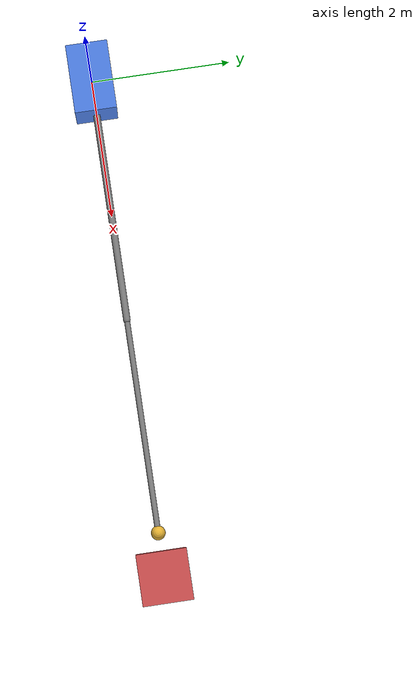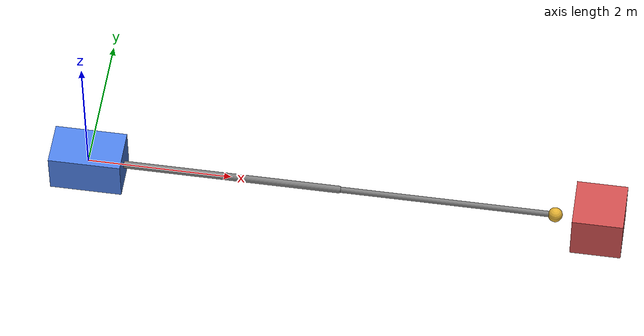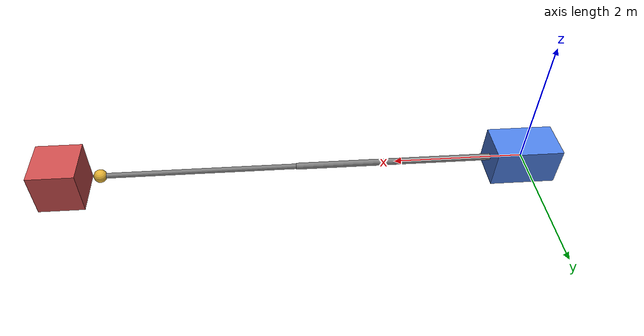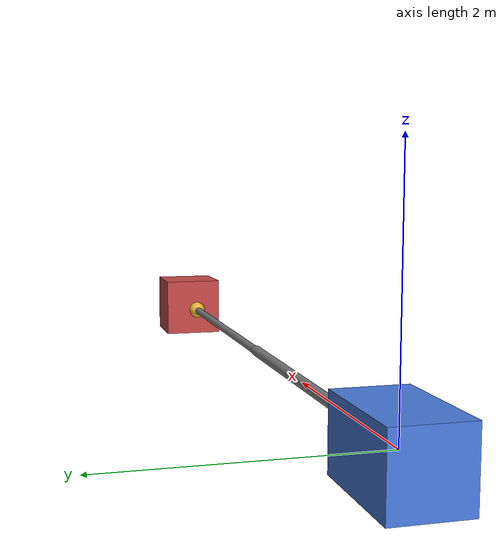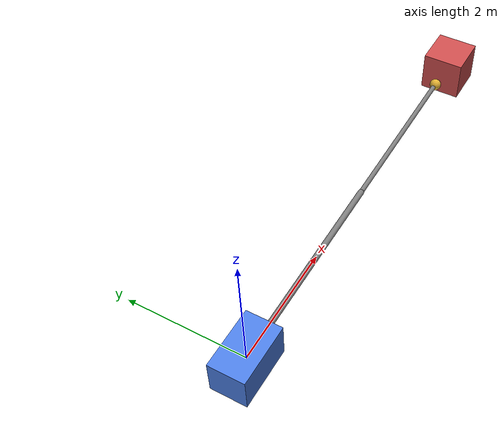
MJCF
<mujoco model="spacecraft_capture">
  <compiler angle="radian"/>
  <option timestep="0.5" gravity="0 0 0" integrator="implicitfast">
    <flag contact="disable"/>
  </option>

  <default>
    <joint damping="50" armature="0.5"/>
  </default>

  <worldbody>
    <body name="bus" pos="0 0 0">
      <freejoint name="base"/>
      <geom type="box" size="0.5 0.3 0.3" mass="800" rgba="0.3 0.5 0.9 1"/>
      <body name="link1" pos="0.5 0 0">
        <joint name="shoulder" type="hinge" axis="0 0 1" range="-2.8 2.8"/>
        <geom type="capsule" fromto="0 0 0 3 0 0" size="0.05" mass="30"/>
        <body name="link2" pos="3 0 0">
          <joint name="elbow" type="hinge" axis="0 0 1" range="-2.8 2.8"/>
          <geom type="capsule" fromto="0 0 0 3 0 0" size="0.04" mass="25"/>
          <body name="ee" pos="3 0 0">
            <geom type="sphere" size="0.1" mass="5" rgba="0.9 0.7 0.2 1"/>
          </body>
        </body>
      </body>
    </body>
    <body name="payload" pos="7.1 0 0">
      <freejoint name="payload_free"/>
      <geom type="box" size="0.35 0.35 0.35" mass="400" rgba="0.8 0.3 0.3 1"/>
    </body>
  </worldbody>

  <actuator>
    <!-- Weak, heavily damped servos: joint response times of minutes once the
         400 kg payload is attached, matching real space manipulators. -->
    <position name="shoulder" joint="shoulder" kp="40" kv="400" ctrlrange="-2.8 2.8"
              forcerange="-60 60"/>
    <position name="elbow" joint="elbow" kp="40" kv="400" ctrlrange="-2.8 2.8"
              forcerange="-60 60"/>
  </actuator>

  <equality>
    <!-- Compliant grasp: relpose puts the payload centre 0.6 m beyond the end
         effector along its x-axis; soft solref pulls in gently over ~4 s. -->
    <weld name="grasp" body1="ee" body2="payload" relpose="0.6 0 0 1 0 0 0" active="false" solref="4 1"/>
  </equality>

  <sensor>
    <framepos name="ee_pos" objtype="body" objname="ee"/>
    <framequat name="ee_quat" objtype="body" objname="ee"/>
    <framelinvel name="ee_linvel" objtype="body" objname="ee"/>
    <framepos name="payload_pos" objtype="body" objname="payload"/>
    <framelinvel name="payload_linvel" objtype="body" objname="payload"/>
  </sensor>

  <mjorbit use_j2="true" use_drag="false" use_srp="false" use_magnetic="false"
           use_gravity_gradient="true">
  </mjorbit>
</mujoco>
